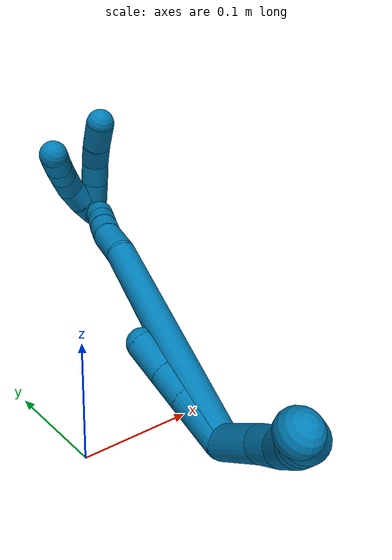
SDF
<sdf version="1.7">
 <world name="default">
  <model name="9">
   <static>0</static>
   <link name="9">
    <collision name="collision-cylinder-e_1_2_8">
     <pose>0.000809 -0.008812 0.018994 0.434374 0.038611 0.008521</pose>
     <geometry><cylinder><radius>0.0125</radius><length>0.041908</length></cylinder></geometry>
     <surface>
      <friction><ode><mu>1.16</mu><mu2>1.16</mu2><slip1>0</slip1><slip2>0</slip2></ode></friction>
      <contact><ode><kp>1e+06</kp><kd>1</kd><max_vel>0</max_vel><min_depth>0.001</min_depth></ode></contact>
     </surface>
    </collision>
    <visual name="visual-cylinder-e_1_2_8">
     <pose>0.000809 -0.008812 0.018994 0.434374 0.038611 0.008521</pose>
     <geometry><cylinder><radius>0.0125</radius><length>0.041908</length></cylinder></geometry>
     <material><ambient>0 0.490196 0.709804 1</ambient></material>
    </visual>
    <collision name="collision-cylinder-e_2_8_9">
     <pose>0.000615 -0.022586 0.048236 0.45094 -0.087828 -0.020157</pose>
     <geometry><cylinder><radius>0.0125</radius><length>0.022861</length></cylinder></geometry>
     <surface>
      <friction><ode><mu>1.16</mu><mu2>1.16</mu2><slip1>0</slip1><slip2>0</slip2></ode></friction>
      <contact><ode><kp>1e+06</kp><kd>1</kd><max_vel>0</max_vel><min_depth>0.001</min_depth></ode></contact>
     </surface>
    </collision>
    <visual name="visual-cylinder-e_2_8_9">
     <pose>0.000615 -0.022586 0.048236 0.45094 -0.087828 -0.020157</pose>
     <geometry><cylinder><radius>0.0125</radius><length>0.022861</length></cylinder></geometry>
     <material><ambient>0 0.490196 0.709804 1</ambient></material>
    </visual>
    <collision name="collision-cylinder-e_3_9_10">
     <pose>-0.003072 -0.030541 0.06906 0.275794 -0.239509 -0.033395</pose>
     <geometry><cylinder><radius>0.0125</radius><length>0.022628</length></cylinder></geometry>
     <surface>
      <friction><ode><mu>1.16</mu><mu2>1.16</mu2><slip1>0</slip1><slip2>0</slip2></ode></friction>
      <contact><ode><kp>1e+06</kp><kd>1</kd><max_vel>0</max_vel><min_depth>0.001</min_depth></ode></contact>
     </surface>
    </collision>
    <visual name="visual-cylinder-e_3_9_10">
     <pose>-0.003072 -0.030541 0.06906 0.275794 -0.239509 -0.033395</pose>
     <geometry><cylinder><radius>0.0125</radius><length>0.022628</length></cylinder></geometry>
     <material><ambient>0 0.490196 0.709804 1</ambient></material>
    </visual>
    <collision name="collision-cylinder-e_4_10_11">
     <pose>-0.010574 -0.034523 0.08904 0.104724 -0.471302 -0.025167</pose>
     <geometry><cylinder><radius>0.0125</radius><length>0.021225</length></cylinder></geometry>
     <surface>
      <friction><ode><mu>1.16</mu><mu2>1.16</mu2><slip1>0</slip1><slip2>0</slip2></ode></friction>
      <contact><ode><kp>1e+06</kp><kd>1</kd><max_vel>0</max_vel><min_depth>0.001</min_depth></ode></contact>
     </surface>
    </collision>
    <visual name="visual-cylinder-e_4_10_11">
     <pose>-0.010574 -0.034523 0.08904 0.104724 -0.471302 -0.025167</pose>
     <geometry><cylinder><radius>0.0125</radius><length>0.021225</length></cylinder></geometry>
     <material><ambient>0 0.490196 0.709804 1</ambient></material>
    </visual>
    <collision name="collision-cylinder-e_5_11_12">
     <pose>-0.019967 -0.036453 0.107324 0.105659 -0.473364 -0.025508</pose>
     <geometry><cylinder><radius>0.0125</radius><length>0.020066</length></cylinder></geometry>
     <surface>
      <friction><ode><mu>1.16</mu><mu2>1.16</mu2><slip1>0</slip1><slip2>0</slip2></ode></friction>
      <contact><ode><kp>1e+06</kp><kd>1</kd><max_vel>0</max_vel><min_depth>0.001</min_depth></ode></contact>
     </surface>
    </collision>
    <visual name="visual-cylinder-e_5_11_12">
     <pose>-0.019967 -0.036453 0.107324 0.105659 -0.473364 -0.025508</pose>
     <geometry><cylinder><radius>0.0125</radius><length>0.020066</length></cylinder></geometry>
     <material><ambient>0 0.490196 0.709804 1</ambient></material>
    </visual>
    <collision name="collision-cylinder-e_6_12_6">
     <pose>-0.031125 -0.036592 0.124543 -0.096004 -0.666114 0.033235</pose>
     <geometry><cylinder><radius>0.0125</radius><length>0.021311</length></cylinder></geometry>
     <surface>
      <friction><ode><mu>1.16</mu><mu2>1.16</mu2><slip1>0</slip1><slip2>0</slip2></ode></friction>
      <contact><ode><kp>1e+06</kp><kd>1</kd><max_vel>0</max_vel><min_depth>0.001</min_depth></ode></contact>
     </surface>
    </collision>
    <visual name="visual-cylinder-e_6_12_6">
     <pose>-0.031125 -0.036592 0.124543 -0.096004 -0.666114 0.033235</pose>
     <geometry><cylinder><radius>0.0125</radius><length>0.021311</length></cylinder></geometry>
     <material><ambient>0 0.490196 0.709804 1</ambient></material>
    </visual>
    <collision name="collision-cylinder-e_1_2_13">
     <pose>-0.000636 0.019976 -0.006032 -1.86407 -0.030459 0.041013</pose>
     <geometry><cylinder><radius>0.0125</radius><length>0.041753</length></cylinder></geometry>
     <surface>
      <friction><ode><mu>1.16</mu><mu2>1.16</mu2><slip1>0</slip1><slip2>0</slip2></ode></friction>
      <contact><ode><kp>1e+06</kp><kd>1</kd><max_vel>0</max_vel><min_depth>0.001</min_depth></ode></contact>
     </surface>
    </collision>
    <visual name="visual-cylinder-e_1_2_13">
     <pose>-0.000636 0.019976 -0.006032 -1.86407 -0.030459 0.041013</pose>
     <geometry><cylinder><radius>0.0125</radius><length>0.041753</length></cylinder></geometry>
     <material><ambient>0 0.490196 0.709804 1</ambient></material>
    </visual>
    <collision name="collision-cylinder-e_2_13_14">
     <pose>-0.001688 0.052532 -0.015799 -1.85937 -0.031719 0.0425</pose>
     <geometry><cylinder><radius>0.0125</radius><length>0.026259</length></cylinder></geometry>
     <surface>
      <friction><ode><mu>1.16</mu><mu2>1.16</mu2><slip1>0</slip1><slip2>0</slip2></ode></friction>
      <contact><ode><kp>1e+06</kp><kd>1</kd><max_vel>0</max_vel><min_depth>0.001</min_depth></ode></contact>
     </surface>
    </collision>
    <visual name="visual-cylinder-e_2_13_14">
     <pose>-0.001688 0.052532 -0.015799 -1.85937 -0.031719 0.0425</pose>
     <geometry><cylinder><radius>0.0125</radius><length>0.026259</length></cylinder></geometry>
     <material><ambient>0 0.490196 0.709804 1</ambient></material>
    </visual>
    <collision name="collision-cylinder-e_3_14_5">
     <pose>-0.003079 0.080612 -0.023358 -1.81271 -0.060994 0.077858</pose>
     <geometry><cylinder><radius>0.0125</radius><length>0.031988</length></cylinder></geometry>
     <surface>
      <friction><ode><mu>1.16</mu><mu2>1.16</mu2><slip1>0</slip1><slip2>0</slip2></ode></friction>
      <contact><ode><kp>1e+06</kp><kd>1</kd><max_vel>0</max_vel><min_depth>0.001</min_depth></ode></contact>
     </surface>
    </collision>
    <visual name="visual-cylinder-e_3_14_5">
     <pose>-0.003079 0.080612 -0.023358 -1.81271 -0.060994 0.077858</pose>
     <geometry><cylinder><radius>0.0125</radius><length>0.031988</length></cylinder></geometry>
     <material><ambient>0 0.490196 0.709804 1</ambient></material>
    </visual>
    <collision name="collision-cylinder-e_1_2_15">
     <pose>0.011172 0.091634 -0.017319 -1.7576 0.119229 -0.143797</pose>
     <geometry><cylinder><radius>0.0125</radius><length>0.187846</length></cylinder></geometry>
     <surface>
      <friction><ode><mu>1.16</mu><mu2>1.16</mu2><slip1>0</slip1><slip2>0</slip2></ode></friction>
      <contact><ode><kp>1e+06</kp><kd>1</kd><max_vel>0</max_vel><min_depth>0.001</min_depth></ode></contact>
     </surface>
    </collision>
    <visual name="visual-cylinder-e_1_2_15">
     <pose>0.011172 0.091634 -0.017319 -1.7576 0.119229 -0.143797</pose>
     <geometry><cylinder><radius>0.0125</radius><length>0.187846</length></cylinder></geometry>
     <material><ambient>0 0.490196 0.709804 1</ambient></material>
    </visual>
    <collision name="collision-cylinder-e_2_15_16">
     <pose>0.024352 0.197438 -0.04105 -1.9957 0.128444 -0.198714</pose>
     <geometry><cylinder><radius>0.0125</radius><length>0.031365</length></cylinder></geometry>
     <surface>
      <friction><ode><mu>1.16</mu><mu2>1.16</mu2><slip1>0</slip1><slip2>0</slip2></ode></friction>
      <contact><ode><kp>1e+06</kp><kd>1</kd><max_vel>0</max_vel><min_depth>0.001</min_depth></ode></contact>
     </surface>
    </collision>
    <visual name="visual-cylinder-e_2_15_16">
     <pose>0.024352 0.197438 -0.04105 -1.9957 0.128444 -0.198714</pose>
     <geometry><cylinder><radius>0.0125</radius><length>0.031365</length></cylinder></geometry>
     <material><ambient>0 0.490196 0.709804 1</ambient></material>
    </visual>
    <collision name="collision-cylinder-e_3_16_17">
     <pose>0.029654 0.220039 -0.052335 -2.09489 0.326109 -0.555486</pose>
     <geometry><cylinder><radius>0.0125</radius><length>0.02056</length></cylinder></geometry>
     <surface>
      <friction><ode><mu>1.16</mu><mu2>1.16</mu2><slip1>0</slip1><slip2>0</slip2></ode></friction>
      <contact><ode><kp>1e+06</kp><kd>1</kd><max_vel>0</max_vel><min_depth>0.001</min_depth></ode></contact>
     </surface>
    </collision>
    <visual name="visual-cylinder-e_3_16_17">
     <pose>0.029654 0.220039 -0.052335 -2.09489 0.326109 -0.555486</pose>
     <geometry><cylinder><radius>0.0125</radius><length>0.02056</length></cylinder></geometry>
     <material><ambient>0 0.490196 0.709804 1</ambient></material>
    </visual>
    <collision name="collision-cylinder-e_4_17_18">
     <pose>0.036724 0.236167 -0.062524 -2.17522 0.383726 -0.709178</pose>
     <geometry><cylinder><radius>0.0125</radius><length>0.020174</length></cylinder></geometry>
     <surface>
      <friction><ode><mu>1.16</mu><mu2>1.16</mu2><slip1>0</slip1><slip2>0</slip2></ode></friction>
      <contact><ode><kp>1e+06</kp><kd>1</kd><max_vel>0</max_vel><min_depth>0.001</min_depth></ode></contact>
     </surface>
    </collision>
    <visual name="visual-cylinder-e_4_17_18">
     <pose>0.036724 0.236167 -0.062524 -2.17522 0.383726 -0.709178</pose>
     <geometry><cylinder><radius>0.0125</radius><length>0.020174</length></cylinder></geometry>
     <material><ambient>0 0.490196 0.709804 1</ambient></material>
    </visual>
    <collision name="collision-cylinder-e_5_18_19">
     <pose>0.044141 0.251498 -0.073178 -2.18099 0.37256 -0.694195</pose>
     <geometry><cylinder><radius>0.0125</radius><length>0.020005</length></cylinder></geometry>
     <surface>
      <friction><ode><mu>1.16</mu><mu2>1.16</mu2><slip1>0</slip1><slip2>0</slip2></ode></friction>
      <contact><ode><kp>1e+06</kp><kd>1</kd><max_vel>0</max_vel><min_depth>0.001</min_depth></ode></contact>
     </surface>
    </collision>
    <visual name="visual-cylinder-e_5_18_19">
     <pose>0.044141 0.251498 -0.073178 -2.18099 0.37256 -0.694195</pose>
     <geometry><cylinder><radius>0.0125</radius><length>0.020005</length></cylinder></geometry>
     <material><ambient>0 0.490196 0.709804 1</ambient></material>
    </visual>
    <collision name="collision-cylinder-e_6_19_1">
     <pose>0.049416 0.266155 -0.085482 -2.35222 0.163691 -0.388877</pose>
     <geometry><cylinder><radius>0.0125</radius><length>0.02005</length></cylinder></geometry>
     <surface>
      <friction><ode><mu>1.16</mu><mu2>1.16</mu2><slip1>0</slip1><slip2>0</slip2></ode></friction>
      <contact><ode><kp>1e+06</kp><kd>1</kd><max_vel>0</max_vel><min_depth>0.001</min_depth></ode></contact>
     </surface>
    </collision>
    <visual name="visual-cylinder-e_6_19_1">
     <pose>0.049416 0.266155 -0.085482 -2.35222 0.163691 -0.388877</pose>
     <geometry><cylinder><radius>0.0125</radius><length>0.02005</length></cylinder></geometry>
     <material><ambient>0 0.490196 0.709804 1</ambient></material>
    </visual>
    <collision name="collision-cylinder-e_1_1_20">
     <pose>0.050803 0.279309 -0.076362 -0.364229 -0.014333 0.00264</pose>
     <geometry><cylinder><radius>0.0125</radius><length>0.034434</length></cylinder></geometry>
     <surface>
      <friction><ode><mu>1.16</mu><mu2>1.16</mu2><slip1>0</slip1><slip2>0</slip2></ode></friction>
      <contact><ode><kp>1e+06</kp><kd>1</kd><max_vel>0</max_vel><min_depth>0.001</min_depth></ode></contact>
     </surface>
    </collision>
    <visual name="visual-cylinder-e_1_1_20">
     <pose>0.050803 0.279309 -0.076362 -0.364229 -0.014333 0.00264</pose>
     <geometry><cylinder><radius>0.0125</radius><length>0.034434</length></cylinder></geometry>
     <material><ambient>0 0.490196 0.709804 1</ambient></material>
    </visual>
    <collision name="collision-cylinder-e_2_20_21">
     <pose>0.050106 0.288938 -0.050622 -0.347395 -0.043849 0.007695</pose>
     <geometry><cylinder><radius>0.0125</radius><length>0.020555</length></cylinder></geometry>
     <surface>
      <friction><ode><mu>1.16</mu><mu2>1.16</mu2><slip1>0</slip1><slip2>0</slip2></ode></friction>
      <contact><ode><kp>1e+06</kp><kd>1</kd><max_vel>0</max_vel><min_depth>0.001</min_depth></ode></contact>
     </surface>
    </collision>
    <visual name="visual-cylinder-e_2_20_21">
     <pose>0.050106 0.288938 -0.050622 -0.347395 -0.043849 0.007695</pose>
     <geometry><cylinder><radius>0.0125</radius><length>0.020555</length></cylinder></geometry>
     <material><ambient>0 0.490196 0.709804 1</ambient></material>
    </visual>
    <collision name="collision-cylinder-e_3_21_22">
     <pose>0.048551 0.293457 -0.030835 -0.100699 -0.107985 0.005447</pose>
     <geometry><cylinder><radius>0.0125</radius><length>0.020489</length></cylinder></geometry>
     <surface>
      <friction><ode><mu>1.16</mu><mu2>1.16</mu2><slip1>0</slip1><slip2>0</slip2></ode></friction>
      <contact><ode><kp>1e+06</kp><kd>1</kd><max_vel>0</max_vel><min_depth>0.001</min_depth></ode></contact>
     </surface>
    </collision>
    <visual name="visual-cylinder-e_3_21_22">
     <pose>0.048551 0.293457 -0.030835 -0.100699 -0.107985 0.005447</pose>
     <geometry><cylinder><radius>0.0125</radius><length>0.020489</length></cylinder></geometry>
     <material><ambient>0 0.490196 0.709804 1</ambient></material>
    </visual>
    <collision name="collision-cylinder-e_4_22_4">
     <pose>0.047093 0.295799 -0.008517 -0.107755 -0.028907 0.001559</pose>
     <geometry><cylinder><radius>0.0125</radius><length>0.024522</length></cylinder></geometry>
     <surface>
      <friction><ode><mu>1.16</mu><mu2>1.16</mu2><slip1>0</slip1><slip2>0</slip2></ode></friction>
      <contact><ode><kp>1e+06</kp><kd>1</kd><max_vel>0</max_vel><min_depth>0.001</min_depth></ode></contact>
     </surface>
    </collision>
    <visual name="visual-cylinder-e_4_22_4">
     <pose>0.047093 0.295799 -0.008517 -0.107755 -0.028907 0.001559</pose>
     <geometry><cylinder><radius>0.0125</radius><length>0.024522</length></cylinder></geometry>
     <material><ambient>0 0.490196 0.709804 1</ambient></material>
    </visual>
    <collision name="collision-cylinder-e_1_1_23">
     <pose>0.044213 0.275929 -0.085689 -0.386704 -0.752751 0.154457</pose>
     <geometry><cylinder><radius>0.0125</radius><length>0.02</length></cylinder></geometry>
     <surface>
      <friction><ode><mu>1.16</mu><mu2>1.16</mu2><slip1>0</slip1><slip2>0</slip2></ode></friction>
      <contact><ode><kp>1e+06</kp><kd>1</kd><max_vel>0</max_vel><min_depth>0.001</min_depth></ode></contact>
     </surface>
    </collision>
    <visual name="visual-cylinder-e_1_1_23">
     <pose>0.044213 0.275929 -0.085689 -0.386704 -0.752751 0.154457</pose>
     <geometry><cylinder><radius>0.0125</radius><length>0.02</length></cylinder></geometry>
     <material><ambient>0 0.490196 0.709804 1</ambient></material>
    </visual>
    <collision name="collision-cylinder-e_2_23_24">
     <pose>0.031404 0.282191 -0.071718 -0.452934 -0.640052 0.152435</pose>
     <geometry><cylinder><radius>0.0125</radius><length>0.02</length></cylinder></geometry>
     <surface>
      <friction><ode><mu>1.16</mu><mu2>1.16</mu2><slip1>0</slip1><slip2>0</slip2></ode></friction>
      <contact><ode><kp>1e+06</kp><kd>1</kd><max_vel>0</max_vel><min_depth>0.001</min_depth></ode></contact>
     </surface>
    </collision>
    <visual name="visual-cylinder-e_2_23_24">
     <pose>0.031404 0.282191 -0.071718 -0.452934 -0.640052 0.152435</pose>
     <geometry><cylinder><radius>0.0125</radius><length>0.02</length></cylinder></geometry>
     <material><ambient>0 0.490196 0.709804 1</ambient></material>
    </visual>
    <collision name="collision-cylinder-e_3_24_25">
     <pose>0.020506 0.286821 -0.055876 -0.12901 -0.515097 0.034025</pose>
     <geometry><cylinder><radius>0.0125</radius><length>0.02</length></cylinder></geometry>
     <surface>
      <friction><ode><mu>1.16</mu><mu2>1.16</mu2><slip1>0</slip1><slip2>0</slip2></ode></friction>
      <contact><ode><kp>1e+06</kp><kd>1</kd><max_vel>0</max_vel><min_depth>0.001</min_depth></ode></contact>
     </surface>
    </collision>
    <visual name="visual-cylinder-e_3_24_25">
     <pose>0.020506 0.286821 -0.055876 -0.12901 -0.515097 0.034025</pose>
     <geometry><cylinder><radius>0.0125</radius><length>0.02</length></cylinder></geometry>
     <material><ambient>0 0.490196 0.709804 1</ambient></material>
    </visual>
    <collision name="collision-cylinder-e_4_25_26">
     <pose>0.01098 0.286575 -0.038472 0.154444 -0.477993 -0.037701</pose>
     <geometry><cylinder><radius>0.0125</radius><length>0.02</length></cylinder></geometry>
     <surface>
      <friction><ode><mu>1.16</mu><mu2>1.16</mu2><slip1>0</slip1><slip2>0</slip2></ode></friction>
      <contact><ode><kp>1e+06</kp><kd>1</kd><max_vel>0</max_vel><min_depth>0.001</min_depth></ode></contact>
     </surface>
    </collision>
    <visual name="visual-cylinder-e_4_25_26">
     <pose>0.01098 0.286575 -0.038472 0.154444 -0.477993 -0.037701</pose>
     <geometry><cylinder><radius>0.0125</radius><length>0.02</length></cylinder></geometry>
     <material><ambient>0 0.490196 0.709804 1</ambient></material>
    </visual>
    <collision name="collision-cylinder-e_5_26_3">
     <pose>0.002122 0.284005 -0.020731 0.133451 -0.439776 -0.029869</pose>
     <geometry><cylinder><radius>0.0125</radius><length>0.02</length></cylinder></geometry>
     <surface>
      <friction><ode><mu>1.16</mu><mu2>1.16</mu2><slip1>0</slip1><slip2>0</slip2></ode></friction>
      <contact><ode><kp>1e+06</kp><kd>1</kd><max_vel>0</max_vel><min_depth>0.001</min_depth></ode></contact>
     </surface>
    </collision>
    <visual name="visual-cylinder-e_5_26_3">
     <pose>0.002122 0.284005 -0.020731 0.133451 -0.439776 -0.029869</pose>
     <geometry><cylinder><radius>0.0125</radius><length>0.02</length></cylinder></geometry>
     <material><ambient>0 0.490196 0.709804 1</ambient></material>
    </visual>
    <collision name="collision-sphere-3">
     <pose>-0.002135 0.282801 -0.011763 0 -0 0</pose>
     <geometry><sphere><radius>0.0125</radius></sphere></geometry>
     <surface>
      <friction><ode><mu>1.16</mu><mu2>1.16</mu2><slip1>0</slip1><slip2>0</slip2></ode></friction>
      <contact><ode><kp>1e+06</kp><kd>1</kd><max_vel>0</max_vel><min_depth>0.001</min_depth></ode></contact>
     </surface>
    </collision>
    <visual name="visual-sphere-3">
     <pose>-0.002135 0.282801 -0.011763 0 -0 0</pose>
     <geometry><sphere><radius>0.0125</radius></sphere></geometry>
     <material><ambient>0 0.490196 0.709804 1</ambient></material>
    </visual>
    <collision name="collision-sphere-26">
     <pose>0.00638 0.285209 -0.029699 0 -0 0</pose>
     <geometry><sphere><radius>0.0125</radius></sphere></geometry>
     <surface>
      <friction><ode><mu>1.16</mu><mu2>1.16</mu2><slip1>0</slip1><slip2>0</slip2></ode></friction>
      <contact><ode><kp>1e+06</kp><kd>1</kd><max_vel>0</max_vel><min_depth>0.001</min_depth></ode></contact>
     </surface>
    </collision>
    <visual name="visual-sphere-26">
     <pose>0.00638 0.285209 -0.029699 0 -0 0</pose>
     <geometry><sphere><radius>0.0125</radius></sphere></geometry>
     <material><ambient>0 0.490196 0.709804 1</ambient></material>
    </visual>
    <collision name="collision-sphere-25">
     <pose>0.01558 0.28794 -0.047246 0 -0 0</pose>
     <geometry><sphere><radius>0.0125</radius></sphere></geometry>
     <surface>
      <friction><ode><mu>1.16</mu><mu2>1.16</mu2><slip1>0</slip1><slip2>0</slip2></ode></friction>
      <contact><ode><kp>1e+06</kp><kd>1</kd><max_vel>0</max_vel><min_depth>0.001</min_depth></ode></contact>
     </surface>
    </collision>
    <visual name="visual-sphere-25">
     <pose>0.01558 0.28794 -0.047246 0 -0 0</pose>
     <geometry><sphere><radius>0.0125</radius></sphere></geometry>
     <material><ambient>0 0.490196 0.709804 1</ambient></material>
    </visual>
    <collision name="collision-sphere-24">
     <pose>0.025432 0.285701 -0.064506 0 -0 0</pose>
     <geometry><sphere><radius>0.0125</radius></sphere></geometry>
     <surface>
      <friction><ode><mu>1.16</mu><mu2>1.16</mu2><slip1>0</slip1><slip2>0</slip2></ode></friction>
      <contact><ode><kp>1e+06</kp><kd>1</kd><max_vel>0</max_vel><min_depth>0.001</min_depth></ode></contact>
     </surface>
    </collision>
    <visual name="visual-sphere-24">
     <pose>0.025432 0.285701 -0.064506 0 -0 0</pose>
     <geometry><sphere><radius>0.0125</radius></sphere></geometry>
     <material><ambient>0 0.490196 0.709804 1</ambient></material>
    </visual>
    <collision name="collision-sphere-23">
     <pose>0.037377 0.278681 -0.07893 0 -0 0</pose>
     <geometry><sphere><radius>0.0125</radius></sphere></geometry>
     <surface>
      <friction><ode><mu>1.16</mu><mu2>1.16</mu2><slip1>0</slip1><slip2>0</slip2></ode></friction>
      <contact><ode><kp>1e+06</kp><kd>1</kd><max_vel>0</max_vel><min_depth>0.001</min_depth></ode></contact>
     </surface>
    </collision>
    <visual name="visual-sphere-23">
     <pose>0.037377 0.278681 -0.07893 0 -0 0</pose>
     <geometry><sphere><radius>0.0125</radius></sphere></geometry>
     <material><ambient>0 0.490196 0.709804 1</ambient></material>
    </visual>
    <collision name="collision-sphere-4">
     <pose>0.046738 0.297117 0.003668 0 -0 0</pose>
     <geometry><sphere><radius>0.0125</radius></sphere></geometry>
     <surface>
      <friction><ode><mu>1.16</mu><mu2>1.16</mu2><slip1>0</slip1><slip2>0</slip2></ode></friction>
      <contact><ode><kp>1e+06</kp><kd>1</kd><max_vel>0</max_vel><min_depth>0.001</min_depth></ode></contact>
     </surface>
    </collision>
    <visual name="visual-sphere-4">
     <pose>0.046738 0.297117 0.003668 0 -0 0</pose>
     <geometry><sphere><radius>0.0125</radius></sphere></geometry>
     <material><ambient>0 0.490196 0.709804 1</ambient></material>
    </visual>
    <collision name="collision-sphere-22">
     <pose>0.047447 0.294481 -0.020702 0 -0 0</pose>
     <geometry><sphere><radius>0.0125</radius></sphere></geometry>
     <surface>
      <friction><ode><mu>1.16</mu><mu2>1.16</mu2><slip1>0</slip1><slip2>0</slip2></ode></friction>
      <contact><ode><kp>1e+06</kp><kd>1</kd><max_vel>0</max_vel><min_depth>0.001</min_depth></ode></contact>
     </surface>
    </collision>
    <visual name="visual-sphere-22">
     <pose>0.047447 0.294481 -0.020702 0 -0 0</pose>
     <geometry><sphere><radius>0.0125</radius></sphere></geometry>
     <material><ambient>0 0.490196 0.709804 1</ambient></material>
    </visual>
    <collision name="collision-sphere-21">
     <pose>0.049655 0.292433 -0.040968 0 -0 0</pose>
     <geometry><sphere><radius>0.0125</radius></sphere></geometry>
     <surface>
      <friction><ode><mu>1.16</mu><mu2>1.16</mu2><slip1>0</slip1><slip2>0</slip2></ode></friction>
      <contact><ode><kp>1e+06</kp><kd>1</kd><max_vel>0</max_vel><min_depth>0.001</min_depth></ode></contact>
     </surface>
    </collision>
    <visual name="visual-sphere-21">
     <pose>0.049655 0.292433 -0.040968 0 -0 0</pose>
     <geometry><sphere><radius>0.0125</radius></sphere></geometry>
     <material><ambient>0 0.490196 0.709804 1</ambient></material>
    </visual>
    <collision name="collision-sphere-20">
     <pose>0.050556 0.285442 -0.060276 0 -0 0</pose>
     <geometry><sphere><radius>0.0125</radius></sphere></geometry>
     <surface>
      <friction><ode><mu>1.16</mu><mu2>1.16</mu2><slip1>0</slip1><slip2>0</slip2></ode></friction>
      <contact><ode><kp>1e+06</kp><kd>1</kd><max_vel>0</max_vel><min_depth>0.001</min_depth></ode></contact>
     </surface>
    </collision>
    <visual name="visual-sphere-20">
     <pose>0.050556 0.285442 -0.060276 0 -0 0</pose>
     <geometry><sphere><radius>0.0125</radius></sphere></geometry>
     <material><ambient>0 0.490196 0.709804 1</ambient></material>
    </visual>
    <collision name="collision-sphere-12">
     <pose>-0.024541 -0.037395 0.116204 0 -0 0</pose>
     <geometry><sphere><radius>0.0125</radius></sphere></geometry>
     <surface>
      <friction><ode><mu>1.16</mu><mu2>1.16</mu2><slip1>0</slip1><slip2>0</slip2></ode></friction>
      <contact><ode><kp>1e+06</kp><kd>1</kd><max_vel>0</max_vel><min_depth>0.001</min_depth></ode></contact>
     </surface>
    </collision>
    <visual name="visual-sphere-12">
     <pose>-0.024541 -0.037395 0.116204 0 -0 0</pose>
     <geometry><sphere><radius>0.0125</radius></sphere></geometry>
     <material><ambient>0 0.490196 0.709804 1</ambient></material>
    </visual>
    <collision name="collision-sphere-11">
     <pose>-0.015393 -0.035511 0.098444 0 -0 0</pose>
     <geometry><sphere><radius>0.0125</radius></sphere></geometry>
     <surface>
      <friction><ode><mu>1.16</mu><mu2>1.16</mu2><slip1>0</slip1><slip2>0</slip2></ode></friction>
      <contact><ode><kp>1e+06</kp><kd>1</kd><max_vel>0</max_vel><min_depth>0.001</min_depth></ode></contact>
     </surface>
    </collision>
    <visual name="visual-sphere-11">
     <pose>-0.015393 -0.035511 0.098444 0 -0 0</pose>
     <geometry><sphere><radius>0.0125</radius></sphere></geometry>
     <material><ambient>0 0.490196 0.709804 1</ambient></material>
    </visual>
    <collision name="collision-sphere-10">
     <pose>-0.005756 -0.033534 0.079636 0 -0 0</pose>
     <geometry><sphere><radius>0.0125</radius></sphere></geometry>
     <surface>
      <friction><ode><mu>1.16</mu><mu2>1.16</mu2><slip1>0</slip1><slip2>0</slip2></ode></friction>
      <contact><ode><kp>1e+06</kp><kd>1</kd><max_vel>0</max_vel><min_depth>0.001</min_depth></ode></contact>
     </surface>
    </collision>
    <visual name="visual-sphere-10">
     <pose>-0.005756 -0.033534 0.079636 0 -0 0</pose>
     <geometry><sphere><radius>0.0125</radius></sphere></geometry>
     <material><ambient>0 0.490196 0.709804 1</ambient></material>
    </visual>
    <collision name="collision-sphere-9">
     <pose>-0.000388 -0.027548 0.058484 0 -0 0</pose>
     <geometry><sphere><radius>0.0125</radius></sphere></geometry>
     <surface>
      <friction><ode><mu>1.16</mu><mu2>1.16</mu2><slip1>0</slip1><slip2>0</slip2></ode></friction>
      <contact><ode><kp>1e+06</kp><kd>1</kd><max_vel>0</max_vel><min_depth>0.001</min_depth></ode></contact>
     </surface>
    </collision>
    <visual name="visual-sphere-9">
     <pose>-0.000388 -0.027548 0.058484 0 -0 0</pose>
     <geometry><sphere><radius>0.0125</radius></sphere></geometry>
     <material><ambient>0 0.490196 0.709804 1</ambient></material>
    </visual>
    <collision name="collision-sphere-2">
     <geometry><sphere><radius>0.0125</radius></sphere></geometry>
     <surface>
      <friction><ode><mu>1.16</mu><mu2>1.16</mu2><slip1>0</slip1><slip2>0</slip2></ode></friction>
      <contact><ode><kp>1e+06</kp><kd>1</kd><max_vel>0</max_vel><min_depth>0.001</min_depth></ode></contact>
     </surface>
    </collision>
    <visual name="visual-sphere-2">
     <geometry><sphere><radius>0.0125</radius></sphere></geometry>
     <material><ambient>0 0.490196 0.709804 1</ambient></material>
    </visual>
    <collision name="collision-sphere-19">
     <pose>0.047782 0.259133 -0.078516 0 -0 0</pose>
     <geometry><sphere><radius>0.0125</radius></sphere></geometry>
     <surface>
      <friction><ode><mu>1.16</mu><mu2>1.16</mu2><slip1>0</slip1><slip2>0</slip2></ode></friction>
      <contact><ode><kp>1e+06</kp><kd>1</kd><max_vel>0</max_vel><min_depth>0.001</min_depth></ode></contact>
     </surface>
    </collision>
    <visual name="visual-sphere-19">
     <pose>0.047782 0.259133 -0.078516 0 -0 0</pose>
     <geometry><sphere><radius>0.0125</radius></sphere></geometry>
     <material><ambient>0 0.490196 0.709804 1</ambient></material>
    </visual>
    <collision name="collision-sphere-8">
     <pose>0.001618 -0.017624 0.037988 0 -0 0</pose>
     <geometry><sphere><radius>0.0125</radius></sphere></geometry>
     <surface>
      <friction><ode><mu>1.16</mu><mu2>1.16</mu2><slip1>0</slip1><slip2>0</slip2></ode></friction>
      <contact><ode><kp>1e+06</kp><kd>1</kd><max_vel>0</max_vel><min_depth>0.001</min_depth></ode></contact>
     </surface>
    </collision>
    <visual name="visual-sphere-8">
     <pose>0.001618 -0.017624 0.037988 0 -0 0</pose>
     <geometry><sphere><radius>0.0125</radius></sphere></geometry>
     <material><ambient>0 0.490196 0.709804 1</ambient></material>
    </visual>
    <collision name="collision-sphere-6">
     <pose>-0.03771 -0.035788 0.132882 0 -0 0</pose>
     <geometry><sphere><radius>0.0125</radius></sphere></geometry>
     <surface>
      <friction><ode><mu>1.16</mu><mu2>1.16</mu2><slip1>0</slip1><slip2>0</slip2></ode></friction>
      <contact><ode><kp>1e+06</kp><kd>1</kd><max_vel>0</max_vel><min_depth>0.001</min_depth></ode></contact>
     </surface>
    </collision>
    <visual name="visual-sphere-6">
     <pose>-0.03771 -0.035788 0.132882 0 -0 0</pose>
     <geometry><sphere><radius>0.0125</radius></sphere></geometry>
     <material><ambient>0 0.490196 0.709804 1</ambient></material>
    </visual>
    <collision name="collision-sphere-13">
     <pose>-0.001272 0.039952 -0.012065 0 -0 0</pose>
     <geometry><sphere><radius>0.0125</radius></sphere></geometry>
     <surface>
      <friction><ode><mu>1.16</mu><mu2>1.16</mu2><slip1>0</slip1><slip2>0</slip2></ode></friction>
      <contact><ode><kp>1e+06</kp><kd>1</kd><max_vel>0</max_vel><min_depth>0.001</min_depth></ode></contact>
     </surface>
    </collision>
    <visual name="visual-sphere-13">
     <pose>-0.001272 0.039952 -0.012065 0 -0 0</pose>
     <geometry><sphere><radius>0.0125</radius></sphere></geometry>
     <material><ambient>0 0.490196 0.709804 1</ambient></material>
    </visual>
    <collision name="collision-sphere-14">
     <pose>-0.002104 0.065113 -0.019534 0 -0 0</pose>
     <geometry><sphere><radius>0.0125</radius></sphere></geometry>
     <surface>
      <friction><ode><mu>1.16</mu><mu2>1.16</mu2><slip1>0</slip1><slip2>0</slip2></ode></friction>
      <contact><ode><kp>1e+06</kp><kd>1</kd><max_vel>0</max_vel><min_depth>0.001</min_depth></ode></contact>
     </surface>
    </collision>
    <visual name="visual-sphere-14">
     <pose>-0.002104 0.065113 -0.019534 0 -0 0</pose>
     <geometry><sphere><radius>0.0125</radius></sphere></geometry>
     <material><ambient>0 0.490196 0.709804 1</ambient></material>
    </visual>
    <collision name="collision-sphere-5">
     <pose>-0.004054 0.096111 -0.027182 0 -0 0</pose>
     <geometry><sphere><radius>0.0125</radius></sphere></geometry>
     <surface>
      <friction><ode><mu>1.16</mu><mu2>1.16</mu2><slip1>0</slip1><slip2>0</slip2></ode></friction>
      <contact><ode><kp>1e+06</kp><kd>1</kd><max_vel>0</max_vel><min_depth>0.001</min_depth></ode></contact>
     </surface>
    </collision>
    <visual name="visual-sphere-5">
     <pose>-0.004054 0.096111 -0.027182 0 -0 0</pose>
     <geometry><sphere><radius>0.0125</radius></sphere></geometry>
     <material><ambient>0 0.490196 0.709804 1</ambient></material>
    </visual>
    <collision name="collision-sphere-15">
     <pose>0.022344 0.183268 -0.034638 0 -0 0</pose>
     <geometry><sphere><radius>0.0125</radius></sphere></geometry>
     <surface>
      <friction><ode><mu>1.16</mu><mu2>1.16</mu2><slip1>0</slip1><slip2>0</slip2></ode></friction>
      <contact><ode><kp>1e+06</kp><kd>1</kd><max_vel>0</max_vel><min_depth>0.001</min_depth></ode></contact>
     </surface>
    </collision>
    <visual name="visual-sphere-15">
     <pose>0.022344 0.183268 -0.034638 0 -0 0</pose>
     <geometry><sphere><radius>0.0125</radius></sphere></geometry>
     <material><ambient>0 0.490196 0.709804 1</ambient></material>
    </visual>
    <collision name="collision-sphere-16">
     <pose>0.026361 0.211608 -0.047462 0 -0 0</pose>
     <geometry><sphere><radius>0.0125</radius></sphere></geometry>
     <surface>
      <friction><ode><mu>1.16</mu><mu2>1.16</mu2><slip1>0</slip1><slip2>0</slip2></ode></friction>
      <contact><ode><kp>1e+06</kp><kd>1</kd><max_vel>0</max_vel><min_depth>0.001</min_depth></ode></contact>
     </surface>
    </collision>
    <visual name="visual-sphere-16">
     <pose>0.026361 0.211608 -0.047462 0 -0 0</pose>
     <geometry><sphere><radius>0.0125</radius></sphere></geometry>
     <material><ambient>0 0.490196 0.709804 1</ambient></material>
    </visual>
    <collision name="collision-sphere-17">
     <pose>0.032948 0.228471 -0.057208 0 -0 0</pose>
     <geometry><sphere><radius>0.0125</radius></sphere></geometry>
     <surface>
      <friction><ode><mu>1.16</mu><mu2>1.16</mu2><slip1>0</slip1><slip2>0</slip2></ode></friction>
      <contact><ode><kp>1e+06</kp><kd>1</kd><max_vel>0</max_vel><min_depth>0.001</min_depth></ode></contact>
     </surface>
    </collision>
    <visual name="visual-sphere-17">
     <pose>0.032948 0.228471 -0.057208 0 -0 0</pose>
     <geometry><sphere><radius>0.0125</radius></sphere></geometry>
     <material><ambient>0 0.490196 0.709804 1</ambient></material>
    </visual>
    <collision name="collision-sphere-18">
     <pose>0.040501 0.243863 -0.067839 0 -0 0</pose>
     <geometry><sphere><radius>0.0125</radius></sphere></geometry>
     <surface>
      <friction><ode><mu>1.16</mu><mu2>1.16</mu2><slip1>0</slip1><slip2>0</slip2></ode></friction>
      <contact><ode><kp>1e+06</kp><kd>1</kd><max_vel>0</max_vel><min_depth>0.001</min_depth></ode></contact>
     </surface>
    </collision>
    <visual name="visual-sphere-18">
     <pose>0.040501 0.243863 -0.067839 0 -0 0</pose>
     <geometry><sphere><radius>0.0125</radius></sphere></geometry>
     <material><ambient>0 0.490196 0.709804 1</ambient></material>
    </visual>
    <collision name="collision-sphere-1">
     <pose>0.05105 0.273177 -0.092448 0 -0 0</pose>
     <geometry><sphere><radius>0.0125</radius></sphere></geometry>
     <surface>
      <friction><ode><mu>1.16</mu><mu2>1.16</mu2><slip1>0</slip1><slip2>0</slip2></ode></friction>
      <contact><ode><kp>1e+06</kp><kd>1</kd><max_vel>0</max_vel><min_depth>0.001</min_depth></ode></contact>
     </surface>
    </collision>
    <visual name="visual-sphere-1">
     <pose>0.05105 0.273177 -0.092448 0 -0 0</pose>
     <geometry><sphere><radius>0.0125</radius></sphere></geometry>
     <material><ambient>0 0.490196 0.709804 1</ambient></material>
    </visual>
    <inertial>
     <pose>0.015628 0.134889 -0.015028 0 -0 0</pose>
     <mass>0.75</mass>
     <inertia>
      <ixx>0.000518</ixx>
      <ixy>0</ixy>
      <ixz>0</ixz>
      <iyy>-0.000123</iyy>
      <iyz>0</iyz>
      <izz>-0.000613</izz>
     </inertia>
    </inertial>
   </link>
   <pose>0.042609 -0.104214 0.057646 0.602451 -0.047622 -0.109879</pose>
  </model>
 </world>
</sdf>
